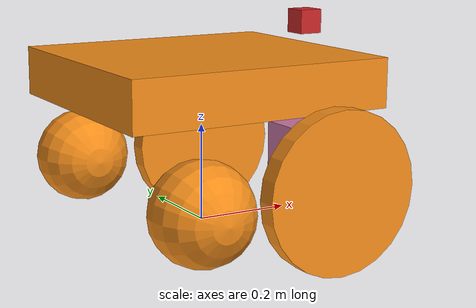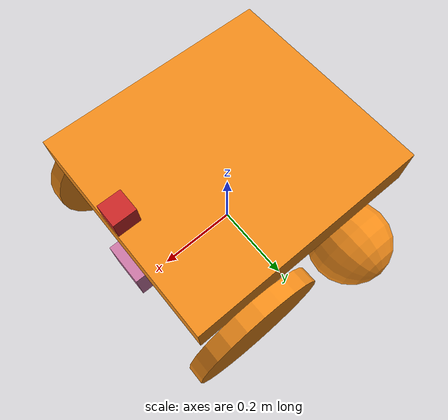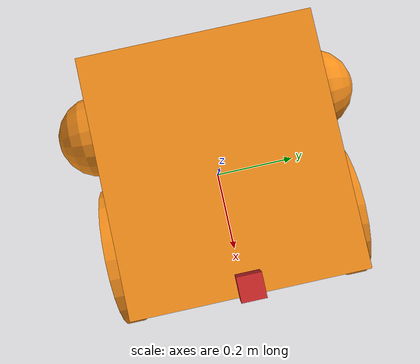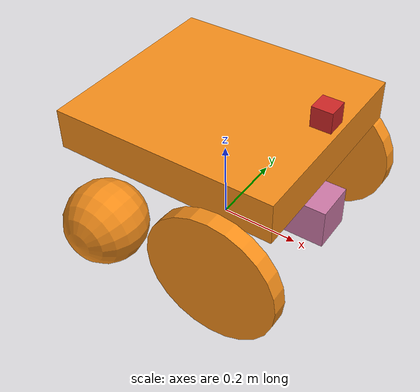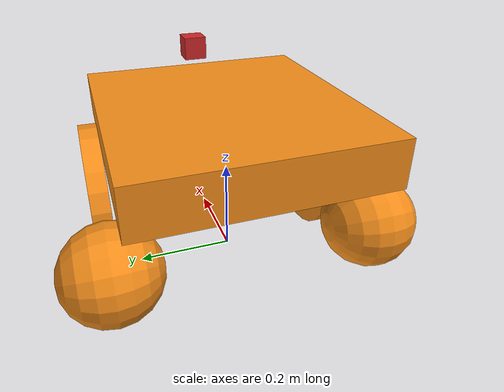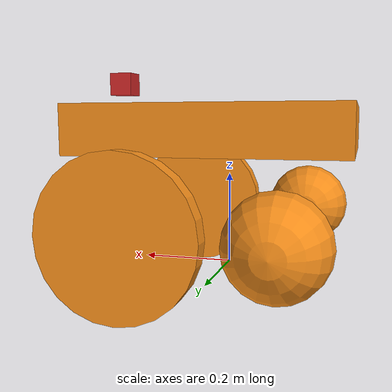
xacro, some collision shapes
<?xml version="1.0"?>
<robot name="myrobot" xmlns:xacro="http://www.ros.org/wiki/xacro">
        <!-- Put here the robot description -->

   <xacro:property name="PI" value="3.1415926535897931"/>
   <xacro:property name="mass" value="75" /> <!-- 75 kg -->

   <xacro:property name="chassis_Height" value="0.1"/>
   <xacro:property name="chassis_Length" value="0.55"/>
   <xacro:property name="chassis_Width" value="0.5"/>
   <xacro:property name="chassis_Mass" value="50"/>

   <xacro:property name="wheel_Width" value="0.04" />
   <xacro:property name="wheel_Length" value="0.2" />
   <xacro:property name="wheel_Mass" value="5" />
   <xacro:property name="wheel_Pos" value="0.2" />
   <xacro:property name="wheel_Radius" value="0.1"/>

   <xacro:property name="camera_link" value="0.05" /> <!-- Size of square 'camera' box -->

   <xacro:include filename="$(find myrobot_description)/urdf/myrobot.gazebo" />
   <xacro:include filename="$(find myrobot_description)/urdf/materials.xacro" />
   <xacro:include filename="$(find myrobot_description)/urdf/macros.xacro" />

     <!-- Base link -->
    <link name="base_link" />

  <link name="chassis">
    <collision>
      <origin xyz="0 0 ${chassis_Height*3}" rpy="0 0 0"/>
      <geometry>
	<box size="${chassis_Length} ${chassis_Width} ${chassis_Height}"/>
      </geometry>
    </collision>

    <visual>
      <origin xyz="0 0 ${chassis_Height*3}" rpy="0 0 0"/>
      <geometry>
	<box size="${chassis_Length} ${chassis_Width} ${chassis_Height}"/>
      </geometry>
      <material name="orange"/>
    </visual>

    <inertial>
      <origin xyz="0 0 ${chassis_Height*3}" rpy="0 0 0"/>
      <mass value="${chassis_Mass}"/>
      <inertia ixx="${chassis_Mass / 12.0 * (chassis_Width*chassis_Width + chassis_Height*chassis_Height)}" ixy="0.0" ixz="0.0"
               iyy="${chassis_Mass / 12.0 * (chassis_Height*chassis_Height + chassis_Width*chassis_Width)}" iyz="0.0"
               izz="${chassis_Mass / 12.0 * (chassis_Width*chassis_Width + chassis_Width*chassis_Width)}"/>
    </inertial>
  </link>

  <joint name="base_link_joint" type="fixed">
    <parent link="base_link"/>
    <child link="chassis"/>
  </joint>

  <joint type="continuous" name="right_back_wheel_joint">
      <parent link="chassis"/>
      <child link="right_back_wheel"/>
      <origin xyz="${-chassis_Width/2 + wheel_Length + wheel_Radius*2} ${-chassis_Width/2 - wheel_Width/2} ${wheel_Radius}" rpy="0  ${PI/2} ${PI/2}"/>
      <axis xyz="0 0 1"/>
      <dynamics damping="0.7"/>
   </joint>

   <link name="right_back_wheel">
      <origin xyz="0 0 0" rpy="0 0 0"/>

      <collision name="collision">
        <geometry>
	  <cylinder radius="${wheel_Radius}" length="${wheel_Width}" />
        </geometry>
      </collision>

      <visual name="visual">
	<geometry>
	  <cylinder radius="${wheel_Radius*1.65}" length="${wheel_Width}"/>
	</geometry>
	<material name="orange"/>
      </visual>

      <inertial>
        <mass value="0.1" />
        <origin xyz="0 0 0" rpy="0 0 0"/>
        <inertia ixx="0.01" ixy="0" ixz="0" iyy="0.01" iyz="0" izz="0.01" />
      </inertial>
   </link>

   <joint type="continuous" name="left_back_wheel_joint">
      <parent link="chassis"/>
      <child link="left_back_wheel"/>
      <origin xyz="${-chassis_Width/2 + wheel_Length + wheel_Radius*2} ${chassis_Width/2 + wheel_Width/2} ${wheel_Radius}" rpy="0   ${PI/2} ${PI/2}"/>
      <axis xyz="0 0 1"/>
      <dynamics damping="0.7"/>
   </joint>

   <link name="left_back_wheel">
      <origin xyz="0 0 0" rpy="0 0 0"/>

      <collision name="collision">
        <geometry>
	  <cylinder radius="${wheel_Radius}" length="${wheel_Width}" />
        </geometry>
      </collision>

      <visual name="visual">
	<geometry>
	  <cylinder radius="${wheel_Radius*1.65}" length="${wheel_Width}"/>
	</geometry>
	<material name="orange"/>
      </visual>

      <inertial>
        <mass value="0.1" />
        <origin xyz="10 0 0" rpy="0 0 0"/>
        <inertia ixx="0.01" ixy="0" ixz="0" iyy="0.01" iyz="0" izz="0.01" />
      </inertial>
   </link>

   <joint type="continuous" name="right_front_wheel_joint">
      <parent link="chassis"/>
      <child link="right_front_wheel"/>
      <origin xyz="${-chassis_Width/2 + wheel_Length/4 + wheel_Radius/2} ${-chassis_Width/2 - wheel_Width/2} ${wheel_Radius}" rpy="0 ${PI/2} ${PI/2}"/>
      <axis xyz="0 0 1"/>
      <dynamics damping="0.7"/>
   </joint>

   <link name="right_front_wheel">
      <origin xyz="0 0 0" rpy="0 0 0"/>

      <collision name="collision">
        <geometry>
          <sphere radius="${wheel_Radius}"/>
	</geometry>
      </collision>

      <visual name="visual">
	<geometry>
          <sphere radius="${wheel_Radius}"/>
	</geometry>
	<material name="orange"/>
      </visual>

      <inertial>
        <mass value="0.1" />
        <origin xyz="0 0 0" rpy="0 0 0"/>
        <inertia ixx="0.01" ixy="0" ixz="0" iyy="0.01" iyz="0" izz="0.01" />
      </inertial>
   </link>

   <joint type="continuous" name="left_front_wheel_joint">
      <parent link="chassis"/>
      <child link="left_front_wheel"/>
      <origin xyz="${-chassis_Width/2 + wheel_Length/4 + wheel_Radius/2} ${chassis_Width/2 + wheel_Width/2} ${wheel_Radius}" rpy="0 ${PI/2} ${PI/2}"/>
      <axis xyz="0 0 1"/>
      <dynamics damping="0.7"/>
   </joint>

   <link name="left_front_wheel">
      <origin xyz="0 0 0" rpy="0 0 0"/>

      <collision name="collision">
        <geometry>
          <sphere radius="${wheel_Radius}"/>
        </geometry>
      </collision>

      <visual name="visual">
	<geometry>
          <sphere radius="${wheel_Radius}"/>
	</geometry>
	<material name="orange"/>
      </visual>

      <inertial>
        <mass value="0.1"/>
        <origin xyz="10 0 0" rpy="0 0 0"/>
        <inertia ixx="0.01" ixy="0" ixz="0" iyy="0.01" iyz="0" izz="0.01"/>
      </inertial>
   </link>

   <!-- Hokuyo Laser -->
   <joint name="hokuyo_joint" type="fixed">
     <axis xyz="0 1 0" />
     <origin xyz="${chassis_Length/2-0.03} 0 ${chassis_Height+0.03}" rpy="0 0 0"/>
     <parent link="chassis"/>
     <child link="hokuyo_link"/>
   </joint>

   <link name="hokuyo_link">
     <collision>
       <origin xyz="0 0 0" rpy="0 0 0"/>
       <geometry>
	 <box size="0.1 0.1 0.1"/>
       </geometry>
     </collision>

     <visual>
       <origin xyz="0 0 0.33" rpy="0 0 0"/>
       <geometry>
        <mesh filename="package://myrobot_description/meshes/hokuyo.dae"/>
       </geometry>
     </visual>

     <inertial>
       <mass value="1e-5" />
       <origin xyz="0 0 0" rpy="0 0 0"/>
       <inertia ixx="1e-6" ixy="0" ixz="0" iyy="1e-6" iyz="0" izz="1e-6" />
     </inertial>
   </link>

	<!-- Camera -->
   <joint name="camera_joint" type="fixed">
     <axis xyz="0 1 0" />
     <origin xyz="${camera_link/2 + chassis_Length/2} 0 ${chassis_Height/2}" rpy="0 0 0"/>
     <parent link="chassis"/>
     <child link="camera_link"/>
   </joint>

   <link name="camera_link">
     <collision>
       <origin xyz="0 0 0" rpy="0 0 0"/>
       <geometry>
	 <box size="${camera_link} ${camera_link} ${camera_link}"/>
       </geometry>
     </collision>

     <visual>
       <origin xyz="-0.05 0 0.35" rpy="0 0 0"/>
       <geometry>
	<box size="${camera_link} ${camera_link} ${camera_link}"/>
       </geometry>
       <material name="red"/>
     </visual>

     <inertial>
       <mass value="1e-5" />
       <origin xyz="0 0 0" rpy="0 0 0"/>
       <inertia ixx="1e-6" ixy="0" ixz="0" iyy="1e-6" iyz="0" izz="1e-6" />
     </inertial>
   </link>

  <!--generate an optical frame http://www.ros.org/reps/rep-0103.html#suffix-frames
       so that ros and opencv can operate on the camera frame correctly -->

   <joint name="camera_optical_joint" type="fixed">
     <!-- these values have to be these values otherwise the gazebo camera image
         won't be aligned properly with the frame it is supposedly originating from -->
     <origin xyz="0 0 0" rpy="${-pi/2} 0 ${-pi/2}"/>
     <parent link="camera_link"/>
     <child link="camera_link_optical"/>
   </joint>

   <link name="camera_link_optical">
   </link>

   <transmission name="tran1">
     <type>transmission_interface/SimpleTransmission</type>
     <joint name="left_back_wheel_joint">
       <hardwareInterface>hardware_interface/EffortJointInterface</hardwareInterface>
     </joint>
     <actuator name="motor1">
       <hardwareInterface>hardware_interface/EffortJointInterface</hardwareInterface>
       <mechanicalReduction>1</mechanicalReduction>
     </actuator>
   </transmission>

   <transmission name="tran2">
     <type>transmission_interface/SimpleTransmission</type>
     <joint name="right_back_wheel_joint">
       <hardwareInterface>hardware_interface/EffortJointInterface</hardwareInterface>
     </joint>
     <actuator name="motor2">
       <hardwareInterface>hardware_interface/EffortJointInterface</hardwareInterface>
       <mechanicalReduction>1</mechanicalReduction>
     </actuator>
   </transmission>

</robot>
